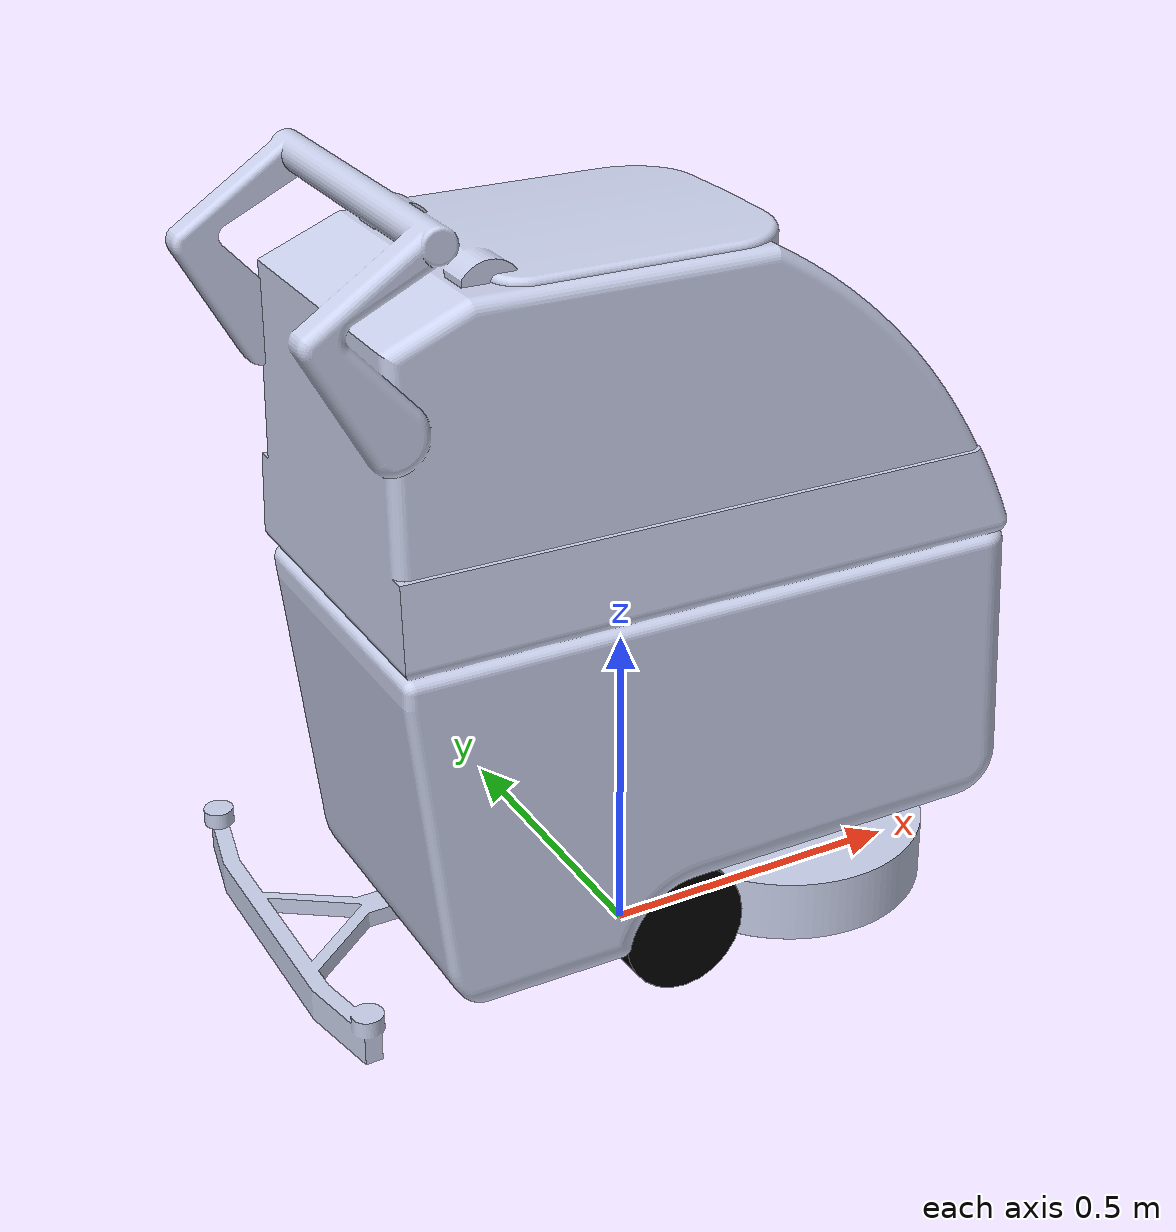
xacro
<?xml version="1.0"?>

<robot
  name="robot_base"
  xmlns:xacro="http://www.ros.org/wiki/xacro"
  >

<xacro:include filename="$(find scrubber_description)/urdf/robot_base.gazebo" />

  <link  name="base_link" />

    <joint
    name="Jchassis"
    type="fixed">
    <origin
      xyz="0 0 0.1"
      rpy="0 0 0" />
    <parent
      link="base_link" />
    <child
      link="chassis" />
    <axis
      xyz="0 0 0" />
  </joint>

   <link
    name="chassis">
    <inertial>
      <origin
        xyz="-0.025921 -0.00023881 -0.093361"
        rpy="0 0 0" />
      <mass
        value="0.3" />
      <inertia
        ixx="1"
        ixy="0"
        ixz="0"
        iyy="1"
        iyz="0"
        izz="1" />
    </inertial>
    <visual>
      <origin
        xyz="0 0 0"
        rpy="0 0 0" />
      <geometry>
        <mesh
          filename="package://scrubber_description/meshes/chassis.stl"/>
      </geometry>
      <material
        name="">
        <color
          rgba="0.79216 0.81961 0.92549 1" />
      </material>
    </visual>
    <collision>
      <origin
        xyz="0 0 0"
        rpy="0 0 0" />
      <geometry>
        <mesh
          filename="package://scrubber_description/meshes/chassis.stl" />
      </geometry>
    </collision>
  </link>

   <joint
    name="JLEFT"
    type="continuous">
    <origin
      xyz="0 0.175 0"
      rpy="0 0 0" />
    <parent
      link="chassis" />
    <child
      link="LEFTWHEEL" />
    <axis
      xyz="0 1 0" />
  </joint>

  <link name="LEFTWHEEL">
    <visual>
      <geometry>
        <cylinder length="0.05" radius="0.1"/>
      </geometry>
      <material name="black">
        <color rgba="0 0 0 1"/>
      </material>
      <origin
      xyz="0 0 0"
      rpy="1.507 0 0" />
    </visual>
    <collision>
    <origin
      xyz="0 0 0"
      rpy="1.507 0 0" />
      <geometry>
        <cylinder length="0.05" radius="0.1"/>
      </geometry>
    </collision>
    <inertial>
    <origin
      xyz="0 0 0"
      rpy="1.507 0 0" />
      <mass value="0.3"/>
      <inertia ixx="1" ixy="0.0" ixz="0.0" iyy="1" iyz="0.0" izz="1"/>
    </inertial>
  </link>

  <joint
    name="JRIGHT"
    type="continuous">
    <origin
      xyz="0 -0.175 0"
      rpy="0 0 0" />
    <parent
      link="chassis" />
    <child
      link="RIGHTWHEEL" />
    <axis
      xyz="0 1 0" />
  </joint>

  <link name="RIGHTWHEEL">
    <visual>
      <geometry>
        <cylinder length="0.05" radius="0.1"/>
      </geometry>
      <material name="black">
        <color rgba="0 0 0 1"/>
      </material>
      <origin
      xyz="0 0 0"
      rpy="1.507 0 0" />
    </visual>
    <collision>
    <origin
      xyz="0 0 0"
      rpy="1.507 0 0" />
      <geometry>
        <cylinder length="0.05" radius="0.1"/>
      </geometry>
    </collision>
    <inertial>
    <origin
      xyz="0 0 0"
      rpy="1.507 0 0" />
      <mass value="0.3"/>
      <inertia ixx="1" ixy="0.0" ixz="0.0" iyy="1" iyz="0.0" izz="1" />
    </inertial>
  </link>

  <joint
    name="brush_joint"
    type="fixed">
    <origin
      xyz="0.3 0.0 -0.09"
      rpy="0 0 0 " />
    <parent
      link="chassis" />
    <child
      link="brush" />
  </joint>

     <link
    name="brush">
    <inertial>
      <origin
        xyz="0 0 0"
        rpy="0 0 0" />
      <mass
        value="0.5" />
        <inertia
        ixx="1"
        ixy="0"
        ixz="0"
        iyy="1"
        iyz="0"
        izz="1" />
      <!--inertia
        ixx="0.28974"
        ixy="-0.003469"
        ixz="0.037331"
        iyy="0.71812"
        iyz="-0.0010571"
        izz="0.69853" /-->
    </inertial>
    <visual>
      <origin
        xyz="0 0 0"
        rpy="0 0 0" />
      <geometry>
        <mesh
          filename="package://scrubber_description/meshes/brush.stl"/>
      </geometry>
      <material
        name="">
        <color
          rgba="0.79216 0.81961 0.92549 1" />
      </material>
    </visual>
    <collision>
      <origin
        xyz="0 0 0"
        rpy="0 0 0" />
      <geometry>
        <mesh
          filename="package://scrubber_description/meshes/brush.stl" />
      </geometry>
    </collision>
  </link>

  <joint
    name="lidar_joint"
    type="fixed">
    <origin
      xyz="0.55 0.0 0.225"
      rpy="0 0 0 " />
    <parent
      link="chassis" />
    <child
      link="lidar" />
  </joint>

  <link  name="lidar" />
<transmission name="left_trans">
  <type>transmission_interface/SimpleTransmission</type>
  <joint name="JLEFT">
    <hardwareInterface>hardware_interface/EffortJointInterface</hardwareInterface>
  </joint>
  <actuator name="Left_Motor">
    <hardwareInterface>hardware_interface/EffortJointInterface</hardwareInterface>
    <mechanicalReduction>1</mechanicalReduction>
  </actuator>
</transmission>

<transmission name="right_trans">
  <type>transmission_interface/SimpleTransmission</type>
  <joint name="JRIGHT">
    <hardwareInterface>hardware_interface/EffortJointInterface</hardwareInterface>
  </joint>
  <actuator name="Right_Motor">
    <hardwareInterface>hardware_interface/EffortJointInterface</hardwareInterface>
    <mechanicalReduction>1</mechanicalReduction>
  </actuator>
</transmission>

</robot>
